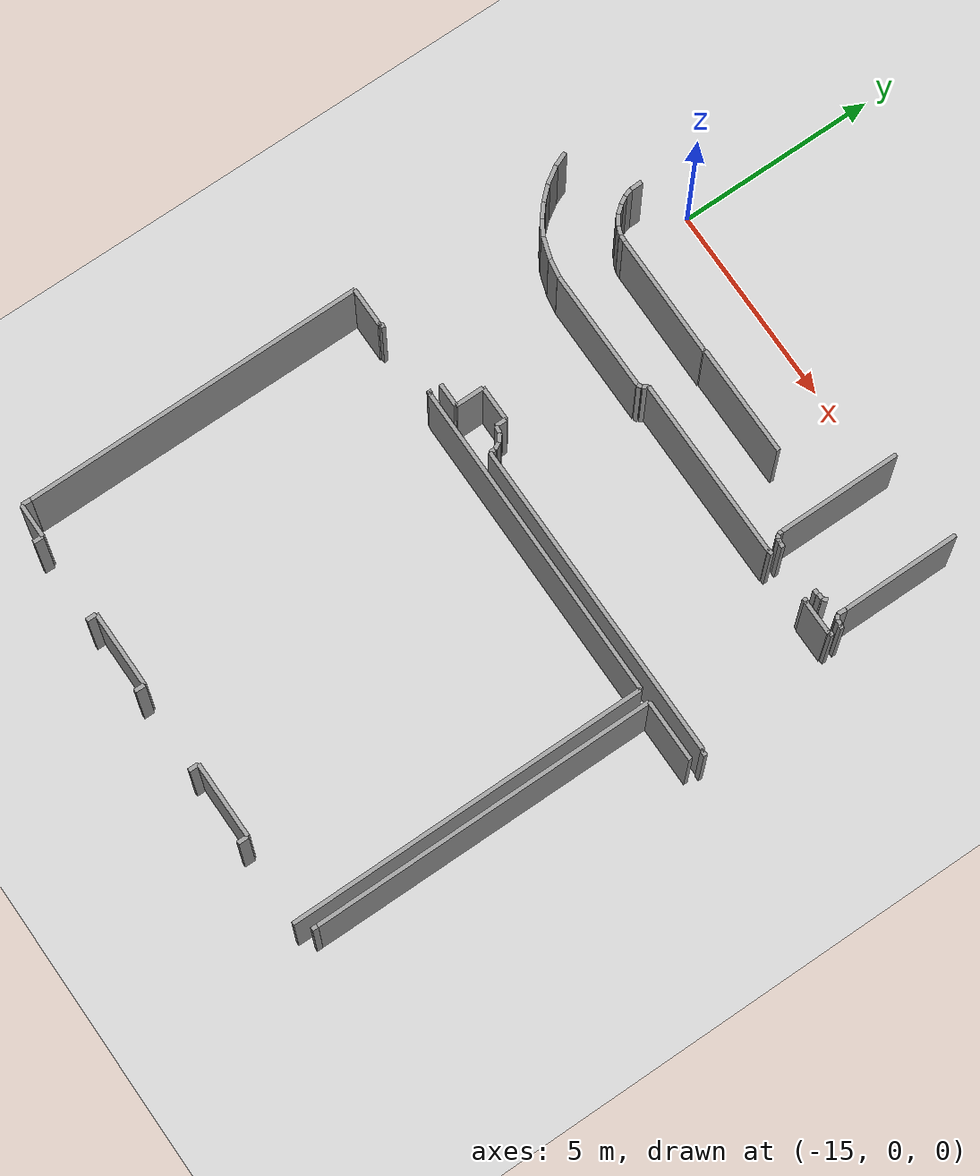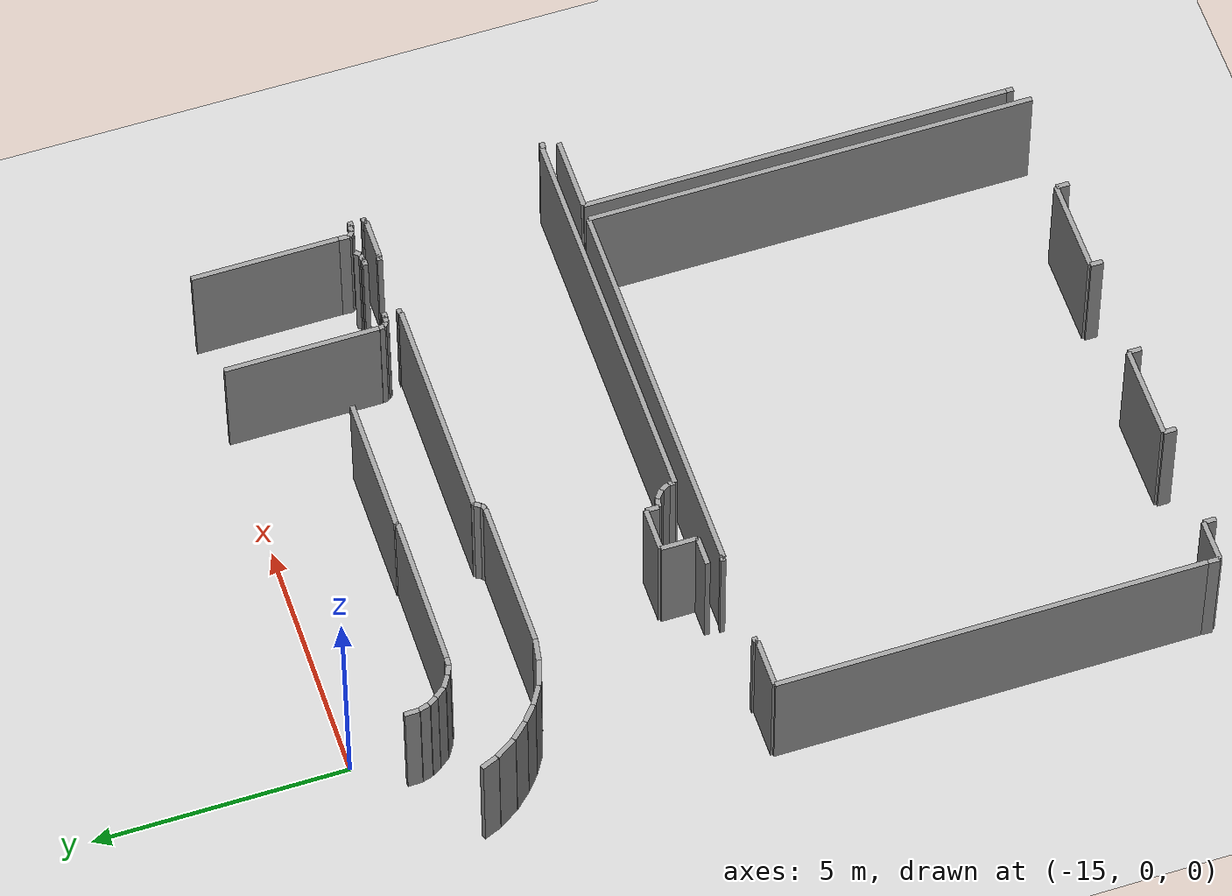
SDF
<sdf version="1.6">
 <world name="default">
  <model name="ground_plane">
   <static>1</static>
   <link name="link">
    <collision name="collision">
     <geometry><plane><normal>0 0 1</normal><size>100 100</size></plane></geometry>
     <surface><friction><ode><mu>100</mu><mu2>50</mu2></ode></friction></surface>
    </collision>
    <visual name="visual">
     <cast_shadows>0</cast_shadows>
     <geometry><plane><normal>0 0 1</normal><size>100 100</size></plane></geometry>
     <material>
      <script><uri>file://media/materials/scripts/gazebo.material</uri><name>Gazebo/Grey</name></script>
     </material>
    </visual>
   </link>
  </model>
  <model name="0510032261_A_40_1_103">
   <static>1</static>
   <link name="Wall_133">
    <collision name="Wall_133_Collision">
     <geometry><box><size>0.0264294790343 0.1 2.5</size></box></geometry>
     <pose>0.0132147395172 0 1.25 0 0 0</pose>
    </collision>
    <visual name="Wall_133_Visual">
     <pose>0.0132147395172 0 1.25 0 0 0</pose>
     <geometry><box><size>0.0264294790343 0.1 2.5</size></box></geometry>
     <material>
      <script><uri>file://media/materials/scripts/gazebo.material</uri><name>Gazebo/Grey</name></script>
      <ambient>1 1 1 1</ambient>
     </material>
    </visual>
    <pose>37.4912325286 -20.0506988564 0 0 0 3.14159265359</pose>
   </link>
   <link name="Wall_134">
    <collision name="Wall_134_Collision">
     <geometry><box><size>0.138328349531 0.1 2.5</size></box></geometry>
     <pose>0.0691641747655 0 1.25 0 0 0</pose>
    </collision>
    <visual name="Wall_134_Visual">
     <pose>0.0691641747655 0 1.25 0 0 0</pose>
     <geometry><box><size>0.138328349531 0.1 2.5</size></box></geometry>
     <material>
      <script><uri>file://media/materials/scripts/gazebo.material</uri><name>Gazebo/Grey</name></script>
      <ambient>1 1 1 1</ambient>
     </material>
    </visual>
    <pose>37.4648030496 -20.0506988564 0 0 0 -2.00198513845</pose>
   </link>
   <link name="Wall_135">
    <collision name="Wall_135_Collision">
     <geometry><box><size>0.109798474855 0.1 2.5</size></box></geometry>
     <pose>0.0548992374275 0 1.25 0 0 0</pose>
    </collision>
    <visual name="Wall_135_Visual">
     <pose>0.0548992374275 0 1.25 0 0 0</pose>
     <geometry><box><size>0.109798474855 0.1 2.5</size></box></geometry>
     <material>
      <script><uri>file://media/materials/scripts/gazebo.material</uri><name>Gazebo/Grey</name></script>
      <ambient>1 1 1 1</ambient>
     </material>
    </visual>
    <pose>37.4069885642 -20.1763659466 0 0 0 -2.6629358198</pose>
   </link>
   <link name="Wall_136">
    <collision name="Wall_136_Collision">
     <geometry><box><size>3.01194409149 0.1 2.5</size></box></geometry>
     <pose>1.50597204574 0 1.25 0 0 0</pose>
    </collision>
    <visual name="Wall_136_Visual">
     <pose>1.50597204574 0 1.25 0 0 0</pose>
     <geometry><box><size>3.01194409149 0.1 2.5</size></box></geometry>
     <material>
      <script><uri>file://media/materials/scripts/gazebo.material</uri><name>Gazebo/Grey</name></script>
      <ambient>1 1 1 1</ambient>
     </material>
    </visual>
    <pose>37.3095298602 -20.2269377382 0 0 0 3.14159265359</pose>
   </link>
   <link name="Wall_137">
    <collision name="Wall_137_Collision">
     <geometry><box><size>0.459233451374 0.1 2.5</size></box></geometry>
     <pose>0.229616725687 0 1.25 0 0 0</pose>
    </collision>
    <visual name="Wall_137_Visual">
     <pose>0.229616725687 0 1.25 0 0 0</pose>
     <geometry><box><size>0.459233451374 0.1 2.5</size></box></geometry>
     <material>
      <script><uri>file://media/materials/scripts/gazebo.material</uri><name>Gazebo/Grey</name></script>
      <ambient>1 1 1 1</ambient>
     </material>
    </visual>
    <pose>34.2975857687 -20.2269377382 0 0 0 2.97312339158</pose>
   </link>
   <link name="Wall_138">
    <collision name="Wall_138_Collision">
     <geometry><box><size>0.546393368792 0.1 2.5</size></box></geometry>
     <pose>0.273196684396 0 1.25 0 0 0</pose>
    </collision>
    <visual name="Wall_138_Visual">
     <pose>0.273196684396 0 1.25 0 0 0</pose>
     <geometry><box><size>0.546393368792 0.1 2.5</size></box></geometry>
     <material>
      <script><uri>file://media/materials/scripts/gazebo.material</uri><name>Gazebo/Grey</name></script>
      <ambient>1 1 1 1</ambient>
     </material>
    </visual>
    <pose>33.8448538755 -20.1499364676 0 0 0 2.82469571603</pose>
   </link>
   <link name="Wall_139">
    <collision name="Wall_139_Collision">
     <geometry><box><size>0.422328388434 0.1 2.5</size></box></geometry>
     <pose>0.211164194217 0 1.25 0 0 0</pose>
    </collision>
    <visual name="Wall_139_Visual">
     <pose>0.211164194217 0 1.25 0 0 0</pose>
     <geometry><box><size>0.422328388434 0.1 2.5</size></box></geometry>
     <material>
      <script><uri>file://media/materials/scripts/gazebo.material</uri><name>Gazebo/Grey</name></script>
      <ambient>1 1 1 1</ambient>
     </material>
    </visual>
    <pose>33.3256670902 -19.9796696315 0 0 0 2.59415572465</pose>
   </link>
   <link name="Wall_140">
    <collision name="Wall_140_Collision">
     <geometry><box><size>0.39449749875 0.1 2.5</size></box></geometry>
     <pose>0.197248749375 0 1.25 0 0 0</pose>
    </collision>
    <visual name="Wall_140_Visual">
     <pose>0.197248749375 0 1.25 0 0 0</pose>
     <geometry><box><size>0.39449749875 0.1 2.5</size></box></geometry>
     <material>
      <script><uri>file://media/materials/scripts/gazebo.material</uri><name>Gazebo/Grey</name></script>
      <ambient>1 1 1 1</ambient>
     </material>
    </visual>
    <pose>32.9650571792 -19.7598475222 0 0 0 2.440792096</pose>
   </link>
   <link name="Wall_141">
    <collision name="Wall_141_Collision">
     <geometry><box><size>0.42944117635 0.1 2.5</size></box></geometry>
     <pose>0.214720588175 0 1.25 0 0 0</pose>
    </collision>
    <visual name="Wall_141_Visual">
     <pose>0.214720588175 0 1.25 0 0 0</pose>
     <geometry><box><size>0.42944117635 0.1 2.5</size></box></geometry>
     <material>
      <script><uri>file://media/materials/scripts/gazebo.material</uri><name>Gazebo/Grey</name></script>
      <ambient>1 1 1 1</ambient>
     </material>
    </visual>
    <pose>32.6635324015 -19.5054637865 0 0 0 2.31726943772</pose>
   </link>
   <link name="Wall_142">
    <collision name="Wall_142_Collision">
     <geometry><box><size>0.473972154313 0.1 2.5</size></box></geometry>
     <pose>0.236986077156 0 1.25 0 0 0</pose>
    </collision>
    <visual name="Wall_142_Visual">
     <pose>0.236986077156 0 1.25 0 0 0</pose>
     <geometry><box><size>0.473972154313 0.1 2.5</size></box></geometry>
     <material>
      <script><uri>file://media/materials/scripts/gazebo.material</uri><name>Gazebo/Grey</name></script>
      <ambient>1 1 1 1</ambient>
     </material>
    </visual>
    <pose>32.3719186785 -19.1902160102 0 0 0 2.14496875925</pose>
   </link>
   <link name="Wall_143">
    <collision name="Wall_143_Collision">
     <geometry><box><size>0.368353697674 0.1 2.5</size></box></geometry>
     <pose>0.184176848837 0 1.25 0 0 0</pose>
    </collision>
    <visual name="Wall_143_Visual">
     <pose>0.184176848837 0 1.25 0 0 0</pose>
     <geometry><box><size>0.368353697674 0.1 2.5</size></box></geometry>
     <material>
      <script><uri>file://media/materials/scripts/gazebo.material</uri><name>Gazebo/Grey</name></script>
      <ambient>1 1 1 1</ambient>
     </material>
    </visual>
    <pose>32.1144853875 -18.792249047 0 0 0 1.95738808135</pose>
   </link>
   <link name="Wall_165">
    <collision name="Wall_165_Collision">
     <geometry><box><size>0.593265565438 0.1 2.5</size></box></geometry>
     <pose>0.296632782719 0 1.25 0 0 0</pose>
    </collision>
    <visual name="Wall_165_Visual">
     <pose>0.296632782719 0 1.25 0 0 0</pose>
     <geometry><box><size>0.593265565438 0.1 2.5</size></box></geometry>
     <material>
      <script><uri>file://media/materials/scripts/gazebo.material</uri><name>Gazebo/Grey</name></script>
      <ambient>1 1 1 1</ambient>
     </material>
    </visual>
    <pose>34.8598475222 -23.7714104193 0 0 0 0.0</pose>
   </link>
   <link name="Wall_166">
    <collision name="Wall_166_Collision">
     <geometry><box><size>0.719949174079 0.1 2.5</size></box></geometry>
     <pose>0.359974587039 0 1.25 0 0 0</pose>
    </collision>
    <visual name="Wall_166_Visual">
     <pose>0.359974587039 0 1.25 0 0 0</pose>
     <geometry><box><size>0.719949174079 0.1 2.5</size></box></geometry>
     <material>
      <script><uri>file://media/materials/scripts/gazebo.material</uri><name>Gazebo/Grey</name></script>
      <ambient>1 1 1 1</ambient>
     </material>
    </visual>
    <pose>35.4531130877 -23.7714104193 0 0 0 1.57079632679</pose>
   </link>
   <link name="Wall_167">
    <collision name="Wall_167_Collision">
     <geometry><box><size>0.877128335451 0.1 2.5</size></box></geometry>
     <pose>0.438564167726 0 1.25 0 0 0</pose>
    </collision>
    <visual name="Wall_167_Visual">
     <pose>0.438564167726 0 1.25 0 0 0</pose>
     <geometry><box><size>0.877128335451 0.1 2.5</size></box></geometry>
     <material>
      <script><uri>file://media/materials/scripts/gazebo.material</uri><name>Gazebo/Grey</name></script>
      <ambient>1 1 1 1</ambient>
     </material>
    </visual>
    <pose>35.4531130877 -23.0514612452 0 0 0 0.0</pose>
   </link>
   <link name="Wall_168">
    <collision name="Wall_168_Collision">
     <geometry><box><size>0.258958068615 0.1 2.5</size></box></geometry>
     <pose>0.129479034307 0 1.25 0 0 0</pose>
    </collision>
    <visual name="Wall_168_Visual">
     <pose>0.129479034307 0 1.25 0 0 0</pose>
     <geometry><box><size>0.258958068615 0.1 2.5</size></box></geometry>
     <material>
      <script><uri>file://media/materials/scripts/gazebo.material</uri><name>Gazebo/Grey</name></script>
      <ambient>1 1 1 1</ambient>
     </material>
    </visual>
    <pose>36.3302414231 -23.0514612452 0 0 0 -1.57079632679</pose>
   </link>
   <link name="Wall_169">
    <collision name="Wall_169_Collision">
     <geometry><box><size>0.185558905784 0.1 2.5</size></box></geometry>
     <pose>0.0927794528922 0 1.25 0 0 0</pose>
    </collision>
    <visual name="Wall_169_Visual">
     <pose>0.0927794528922 0 1.25 0 0 0</pose>
     <geometry><box><size>0.185558905784 0.1 2.5</size></box></geometry>
     <material>
      <script><uri>file://media/materials/scripts/gazebo.material</uri><name>Gazebo/Grey</name></script>
      <ambient>1 1 1 1</ambient>
     </material>
    </visual>
    <pose>36.3302414231 -23.3104193139 0 0 0 -0.135311831182</pose>
   </link>
   <link name="Wall_170">
    <collision name="Wall_170_Collision">
     <geometry><box><size>0.207497445864 0.1 2.5</size></box></geometry>
     <pose>0.103748722932 0 1.25 0 0 0</pose>
    </collision>
    <visual name="Wall_170_Visual">
     <pose>0.103748722932 0 1.25 0 0 0</pose>
     <geometry><box><size>0.207497445864 0.1 2.5</size></box></geometry>
     <material>
      <script><uri>file://media/materials/scripts/gazebo.material</uri><name>Gazebo/Grey</name></script>
      <ambient>1 1 1 1</ambient>
     </material>
    </visual>
    <pose>36.5141041931 -23.3354510801 0 0 0 -0.699991481755</pose>
   </link>
   <link name="Wall_171">
    <collision name="Wall_171_Collision">
     <geometry><box><size>0.186954603456 0.1 2.5</size></box></geometry>
     <pose>0.0934773017278 0 1.25 0 0 0</pose>
    </collision>
    <visual name="Wall_171_Visual">
     <pose>0.0934773017278 0 1.25 0 0 0</pose>
     <geometry><box><size>0.186954603456 0.1 2.5</size></box></geometry>
     <material>
      <script><uri>file://media/materials/scripts/gazebo.material</uri><name>Gazebo/Grey</name></script>
      <ambient>1 1 1 1</ambient>
     </material>
    </visual>
    <pose>36.6728081321 -23.4691232529 0 0 0 -1.10714871779</pose>
   </link>
   <link name="Wall_172">
    <collision name="Wall_172_Collision">
     <geometry><box><size>0.125285895807 0.1 2.5</size></box></geometry>
     <pose>0.0626429479034 0 1.25 0 0 0</pose>
    </collision>
    <visual name="Wall_172_Visual">
     <pose>0.0626429479034 0 1.25 0 0 0</pose>
     <geometry><box><size>0.125285895807 0.1 2.5</size></box></geometry>
     <material>
      <script><uri>file://media/materials/scripts/gazebo.material</uri><name>Gazebo/Grey</name></script>
      <ambient>1 1 1 1</ambient>
     </material>
    </visual>
    <pose>36.7564167726 -23.6363405337 0 0 0 -1.57079632679</pose>
   </link>
   <link name="Wall_173">
    <collision name="Wall_173_Collision">
     <geometry><box><size>8.03494282084 0.1 2.5</size></box></geometry>
     <pose>4.01747141042 0 1.25 0 0 0</pose>
    </collision>
    <visual name="Wall_173_Visual">
     <pose>4.01747141042 0 1.25 0 0 0</pose>
     <geometry><box><size>8.03494282084 0.1 2.5</size></box></geometry>
     <material>
      <script><uri>file://media/materials/scripts/gazebo.material</uri><name>Gazebo/Grey</name></script>
      <ambient>1 1 1 1</ambient>
     </material>
    </visual>
    <pose>36.7564167726 -23.7616264295 0 0 0 0.0</pose>
   </link>
   <link name="Wall_174">
    <collision name="Wall_174_Collision">
     <geometry><box><size>0.0288437102923 0.1 2.5</size></box></geometry>
     <pose>0.0144218551461 0 1.25 0 0 0</pose>
    </collision>
    <visual name="Wall_174_Visual">
     <pose>0.0144218551461 0 1.25 0 0 0</pose>
     <geometry><box><size>0.0288437102923 0.1 2.5</size></box></geometry>
     <material>
      <script><uri>file://media/materials/scripts/gazebo.material</uri><name>Gazebo/Grey</name></script>
      <ambient>1 1 1 1</ambient>
     </material>
    </visual>
    <pose>44.7913595934 -23.7616264295 0 0 0 -1.57079632679</pose>
   </link>
   <link name="Wall_175">
    <collision name="Wall_175_Collision">
     <geometry><box><size>0.133672172808 0.1 2.5</size></box></geometry>
     <pose>0.0668360864041 0 1.25 0 0 0</pose>
    </collision>
    <visual name="Wall_175_Visual">
     <pose>0.0668360864041 0 1.25 0 0 0</pose>
     <geometry><box><size>0.133672172808 0.1 2.5</size></box></geometry>
     <material>
      <script><uri>file://media/materials/scripts/gazebo.material</uri><name>Gazebo/Grey</name></script>
      <ambient>1 1 1 1</ambient>
     </material>
    </visual>
    <pose>44.7913595934 -23.7904701398 0 0 0 0.0</pose>
   </link>
   <link name="Wall_198">
    <collision name="Wall_198_Collision">
     <geometry><box><size>0.0997458703939 0.1 2.5</size></box></geometry>
     <pose>0.049872935197 0 1.25 0 0 0</pose>
    </collision>
    <visual name="Wall_198_Visual">
     <pose>0.049872935197 0 1.25 0 0 0</pose>
     <geometry><box><size>0.0997458703939 0.1 2.5</size></box></geometry>
     <material>
      <script><uri>file://media/materials/scripts/gazebo.material</uri><name>Gazebo/Grey</name></script>
      <ambient>1 1 1 1</ambient>
     </material>
    </visual>
    <pose>44.3207115629 -20.017407878 0 0 0 3.14159265359</pose>
   </link>
   <link name="Wall_199">
    <collision name="Wall_199_Collision">
     <geometry><box><size>0.0329097839898 0.1 2.5</size></box></geometry>
     <pose>0.0164548919949 0 1.25 0 0 0</pose>
    </collision>
    <visual name="Wall_199_Visual">
     <pose>0.0164548919949 0 1.25 0 0 0</pose>
     <geometry><box><size>0.0329097839898 0.1 2.5</size></box></geometry>
     <material>
      <script><uri>file://media/materials/scripts/gazebo.material</uri><name>Gazebo/Grey</name></script>
      <ambient>1 1 1 1</ambient>
     </material>
    </visual>
    <pose>44.2209656925 -20.017407878 0 0 0 -1.57079632679</pose>
   </link>
   <link name="Wall_200">
    <collision name="Wall_200_Collision">
     <geometry><box><size>0.847395171537 0.1 2.5</size></box></geometry>
     <pose>0.423697585769 0 1.25 0 0 0</pose>
    </collision>
    <visual name="Wall_200_Visual">
     <pose>0.423697585769 0 1.25 0 0 0</pose>
     <geometry><box><size>0.847395171537 0.1 2.5</size></box></geometry>
     <material>
      <script><uri>file://media/materials/scripts/gazebo.material</uri><name>Gazebo/Grey</name></script>
      <ambient>1 1 1 1</ambient>
     </material>
    </visual>
    <pose>44.2209656925 -20.050317662 0 0 0 3.14159265359</pose>
   </link>
   <link name="Wall_201">
    <collision name="Wall_201_Collision">
     <geometry><box><size>0.0166454891995 0.1 2.5</size></box></geometry>
     <pose>0.00832274459975 0 1.25 0 0 0</pose>
    </collision>
    <visual name="Wall_201_Visual">
     <pose>0.00832274459975 0 1.25 0 0 0</pose>
     <geometry><box><size>0.0166454891995 0.1 2.5</size></box></geometry>
     <material>
      <script><uri>file://media/materials/scripts/gazebo.material</uri><name>Gazebo/Grey</name></script>
      <ambient>1 1 1 1</ambient>
     </material>
    </visual>
    <pose>43.373570521 -20.050317662 0 0 0 1.57079632679</pose>
   </link>
   <link name="Wall_202">
    <collision name="Wall_202_Collision">
     <geometry><box><size>0.087166454892 0.1 2.5</size></box></geometry>
     <pose>0.043583227446 0 1.25 0 0 0</pose>
    </collision>
    <visual name="Wall_202_Visual">
     <pose>0.043583227446 0 1.25 0 0 0</pose>
     <geometry><box><size>0.087166454892 0.1 2.5</size></box></geometry>
     <material>
      <script><uri>file://media/materials/scripts/gazebo.material</uri><name>Gazebo/Grey</name></script>
      <ambient>1 1 1 1</ambient>
     </material>
    </visual>
    <pose>43.373570521 -20.0336721728 0 0 0 3.14159265359</pose>
   </link>
   <link name="Wall_203">
    <collision name="Wall_203_Collision">
     <geometry><box><size>0.104828462516 0.1 2.5</size></box></geometry>
     <pose>0.0524142312579 0 1.25 0 0 0</pose>
    </collision>
    <visual name="Wall_203_Visual">
     <pose>0.0524142312579 0 1.25 0 0 0</pose>
     <geometry><box><size>0.104828462516 0.1 2.5</size></box></geometry>
     <material>
      <script><uri>file://media/materials/scripts/gazebo.material</uri><name>Gazebo/Grey</name></script>
      <ambient>1 1 1 1</ambient>
     </material>
    </visual>
    <pose>42.1062261753 -20.0336721728 0 0 0 3.14159265359</pose>
   </link>
   <link name="Wall_204">
    <collision name="Wall_204_Collision">
     <geometry><box><size>0.0198221092757 0.1 2.5</size></box></geometry>
     <pose>0.00991105463787 0 1.25 0 0 0</pose>
    </collision>
    <visual name="Wall_204_Visual">
     <pose>0.00991105463787 0 1.25 0 0 0</pose>
     <geometry><box><size>0.0198221092757 0.1 2.5</size></box></geometry>
     <material>
      <script><uri>file://media/materials/scripts/gazebo.material</uri><name>Gazebo/Grey</name></script>
      <ambient>1 1 1 1</ambient>
     </material>
    </visual>
    <pose>42.0013977128 -20.0336721728 0 0 0 -1.57079632679</pose>
   </link>
   <link name="Wall_205">
    <collision name="Wall_205_Collision">
     <geometry><box><size>4.51016605055 0.1 2.5</size></box></geometry>
     <pose>2.25508302528 0 1.25 0 0 0</pose>
    </collision>
    <visual name="Wall_205_Visual">
     <pose>2.25508302528 0 1.25 0 0 0</pose>
     <geometry><box><size>4.51016605055 0.1 2.5</size></box></geometry>
     <material>
      <script><uri>file://media/materials/scripts/gazebo.material</uri><name>Gazebo/Grey</name></script>
      <ambient>1 1 1 1</ambient>
     </material>
    </visual>
    <pose>42.0013977128 -20.0534942821 0 0 0 3.14097284806</pose>
   </link>
   <link name="Wall_206">
    <collision name="Wall_206_Collision">
     <geometry><box><size>3.06968528981 0.1 2.5</size></box></geometry>
     <pose>1.53484264491 0 1.25 0 0 0</pose>
    </collision>
    <visual name="Wall_206_Visual">
     <pose>1.53484264491 0 1.25 0 0 0</pose>
     <geometry><box><size>3.06968528981 0.1 2.5</size></box></geometry>
     <material>
      <script><uri>file://media/materials/scripts/gazebo.material</uri><name>Gazebo/Grey</name></script>
      <ambient>1 1 1 1</ambient>
     </material>
    </visual>
    <pose>37.5 -18.5733163914 0 0 0 3.13567335854</pose>
   </link>
   <link name="Wall_207">
    <collision name="Wall_207_Collision">
     <geometry><box><size>0.16783259646 0.1 2.5</size></box></geometry>
     <pose>0.0839162982301 0 1.25 0 0 0</pose>
    </collision>
    <visual name="Wall_207_Visual">
     <pose>0.0839162982301 0 1.25 0 0 0</pose>
     <geometry><box><size>0.16783259646 0.1 2.5</size></box></geometry>
     <material>
      <script><uri>file://media/materials/scripts/gazebo.material</uri><name>Gazebo/Grey</name></script>
      <ambient>1 1 1 1</ambient>
     </material>
    </visual>
    <pose>34.4303684879 -18.5551461245 0 0 0 3.05593649459</pose>
   </link>
   <link name="Wall_208">
    <collision name="Wall_208_Collision">
     <geometry><box><size>0.210217762829 0.1 2.5</size></box></geometry>
     <pose>0.105108881414 0 1.25 0 0 0</pose>
    </collision>
    <visual name="Wall_208_Visual">
     <pose>0.105108881414 0 1.25 0 0 0</pose>
     <geometry><box><size>0.210217762829 0.1 2.5</size></box></geometry>
     <material>
      <script><uri>file://media/materials/scripts/gazebo.material</uri><name>Gazebo/Grey</name></script>
      <ambient>1 1 1 1</ambient>
     </material>
    </visual>
    <pose>34.2631512071 -18.5407878018 0 0 0 2.76916781565</pose>
   </link>
   <link name="Wall_209">
    <collision name="Wall_209_Collision">
     <geometry><box><size>0.279547562621 0.1 2.5</size></box></geometry>
     <pose>0.139773781311 0 1.25 0 0 0</pose>
    </collision>
    <visual name="Wall_209_Visual">
     <pose>0.139773781311 0 1.25 0 0 0</pose>
     <geometry><box><size>0.279547562621 0.1 2.5</size></box></geometry>
     <material>
      <script><uri>file://media/materials/scripts/gazebo.material</uri><name>Gazebo/Grey</name></script>
      <ambient>1 1 1 1</ambient>
     </material>
    </visual>
    <pose>34.0673443456 -18.4642947903 0 0 0 2.56304513893</pose>
   </link>
   <link name="Wall_210">
    <collision name="Wall_210_Collision">
     <geometry><box><size>0.248407302775 0.1 2.5</size></box></geometry>
     <pose>0.124203651388 0 1.25 0 0 0</pose>
    </collision>
    <visual name="Wall_210_Visual">
     <pose>0.124203651388 0 1.25 0 0 0</pose>
     <geometry><box><size>0.248407302775 0.1 2.5</size></box></geometry>
     <material>
      <script><uri>file://media/materials/scripts/gazebo.material</uri><name>Gazebo/Grey</name></script>
      <ambient>1 1 1 1</ambient>
     </material>
    </visual>
    <pose>33.8332909784 -18.3114358323 0 0 0 2.23363402041</pose>
   </link>
   <link name="Wall_211">
    <collision name="Wall_211_Collision">
     <geometry><box><size>0.208134552149 0.1 2.5</size></box></geometry>
     <pose>0.104067276074 0 1.25 0 0 0</pose>
    </collision>
    <visual name="Wall_211_Visual">
     <pose>0.104067276074 0 1.25 0 0 0</pose>
     <geometry><box><size>0.208134552149 0.1 2.5</size></box></geometry>
     <material>
      <script><uri>file://media/materials/scripts/gazebo.material</uri><name>Gazebo/Grey</name></script>
      <ambient>1 1 1 1</ambient>
     </material>
    </visual>
    <pose>33.6804320203 -18.1156289708 0 0 0 2.12713071364</pose>
   </link>
   <link name="Wall_212">
    <collision name="Wall_212_Collision">
     <geometry><box><size>0.208658900604 0.1 2.5</size></box></geometry>
     <pose>0.104329450302 0 1.25 0 0 0</pose>
    </collision>
    <visual name="Wall_212_Visual">
     <pose>0.104329450302 0 1.25 0 0 0</pose>
     <geometry><box><size>0.208658900604 0.1 2.5</size></box></geometry>
     <material>
      <script><uri>file://media/materials/scripts/gazebo.material</uri><name>Gazebo/Grey</name></script>
      <ambient>1 1 1 1</ambient>
     </material>
    </visual>
    <pose>33.5705209657 -17.9388818297 0 0 0 1.84901233879</pose>
   </link>
   <link name="Wall_213">
    <collision name="Wall_213_Collision">
     <geometry><box><size>0.292511373344 0.1 2.5</size></box></geometry>
     <pose>0.146255686672 0 1.25 0 0 0</pose>
    </collision>
    <visual name="Wall_213_Visual">
     <pose>0.146255686672 0 1.25 0 0 0</pose>
     <geometry><box><size>0.292511373344 0.1 2.5</size></box></geometry>
     <material>
      <script><uri>file://media/materials/scripts/gazebo.material</uri><name>Gazebo/Grey</name></script>
      <ambient>1 1 1 1</ambient>
     </material>
    </visual>
    <pose>33.5132147395 -17.7382465057 0 0 0 1.60120850309</pose>
   </link>
   <link name="Wall_233">
    <collision name="Wall_233_Collision">
     <geometry><box><size>2.76454891995 0.1 2.5</size></box></geometry>
     <pose>1.38227445997 0 1.25 0 0 0</pose>
    </collision>
    <visual name="Wall_233_Visual">
     <pose>1.38227445997 0 1.25 0 0 0</pose>
     <geometry><box><size>2.76454891995 0.1 2.5</size></box></geometry>
     <material>
      <script><uri>file://media/materials/scripts/gazebo.material</uri><name>Gazebo/Grey</name></script>
      <ambient>1 1 1 1</ambient>
     </material>
    </visual>
    <pose>40.2772554003 -18.550317662 0 0 0 3.14159265359</pose>
   </link>
   <link name="Wall_234">
    <collision name="Wall_234_Collision">
     <geometry><box><size>0.0262753914061 0.1 2.5</size></box></geometry>
     <pose>0.0131376957031 0 1.25 0 0 0</pose>
    </collision>
    <visual name="Wall_234_Visual">
     <pose>0.0131376957031 0 1.25 0 0 0</pose>
     <geometry><box><size>0.0262753914061 0.1 2.5</size></box></geometry>
     <material>
      <script><uri>file://media/materials/scripts/gazebo.material</uri><name>Gazebo/Grey</name></script>
      <ambient>1 1 1 1</ambient>
     </material>
    </visual>
    <pose>37.5127064803 -18.550317662 0 0 0 -2.07554631507</pose>
   </link>
   <link name="Wall_275">
    <collision name="Wall_275_Collision">
     <geometry><box><size>8.48500635324 0.1 2.5</size></box></geometry>
     <pose>4.24250317662 0 1.25 0 0 0</pose>
    </collision>
    <visual name="Wall_275_Visual">
     <pose>4.24250317662 0 1.25 0 0 0</pose>
     <geometry><box><size>8.48500635324 0.1 2.5</size></box></geometry>
     <material>
      <script><uri>file://media/materials/scripts/gazebo.material</uri><name>Gazebo/Grey</name></script>
      <ambient>1 1 1 1</ambient>
     </material>
    </visual>
    <pose>31.9881829733 -32.5893265565 0 0 0 1.57079632679</pose>
   </link>
   <link name="Wall_276">
    <collision name="Wall_276_Collision">
     <geometry><box><size>0.978526048285 0.1 2.5</size></box></geometry>
     <pose>0.489263024142 0 1.25 0 0 0</pose>
    </collision>
    <visual name="Wall_276_Visual">
     <pose>0.489263024142 0 1.25 0 0 0</pose>
     <geometry><box><size>0.978526048285 0.1 2.5</size></box></geometry>
     <material>
      <script><uri>file://media/materials/scripts/gazebo.material</uri><name>Gazebo/Grey</name></script>
      <ambient>1 1 1 1</ambient>
     </material>
    </visual>
    <pose>31.9881829733 -24.1043202033 0 0 0 0.0</pose>
   </link>
   <link name="Wall_277">
    <collision name="Wall_277_Collision">
     <geometry><box><size>0.0367217280813 0.1 2.5</size></box></geometry>
     <pose>0.0183608640407 0 1.25 0 0 0</pose>
    </collision>
    <visual name="Wall_277_Visual">
     <pose>0.0183608640407 0 1.25 0 0 0</pose>
     <geometry><box><size>0.0367217280813 0.1 2.5</size></box></geometry>
     <material>
      <script><uri>file://media/materials/scripts/gazebo.material</uri><name>Gazebo/Grey</name></script>
      <ambient>1 1 1 1</ambient>
     </material>
    </visual>
    <pose>32.9667090216 -24.1043202033 0 0 0 1.57079632679</pose>
   </link>
   <link name="Wall_278">
    <collision name="Wall_278_Collision">
     <geometry><box><size>0.107750952986 0.1 2.5</size></box></geometry>
     <pose>0.053875476493 0 1.25 0 0 0</pose>
    </collision>
    <visual name="Wall_278_Visual">
     <pose>0.053875476493 0 1.25 0 0 0</pose>
     <geometry><box><size>0.107750952986 0.1 2.5</size></box></geometry>
     <material>
      <script><uri>file://media/materials/scripts/gazebo.material</uri><name>Gazebo/Grey</name></script>
      <ambient>1 1 1 1</ambient>
     </material>
    </visual>
    <pose>32.9667090216 -24.0675984752 0 0 0 0.0</pose>
   </link>
   <link name="Wall_279">
    <collision name="Wall_279_Collision">
     <geometry><box><size>0.0872935196951 0.1 2.5</size></box></geometry>
     <pose>0.0436467598475 0 1.25 0 0 0</pose>
    </collision>
    <visual name="Wall_279_Visual">
     <pose>0.0436467598475 0 1.25 0 0 0</pose>
     <geometry><box><size>0.0872935196951 0.1 2.5</size></box></geometry>
     <material>
      <script><uri>file://media/materials/scripts/gazebo.material</uri><name>Gazebo/Grey</name></script>
      <ambient>1 1 1 1</ambient>
     </material>
    </visual>
    <pose>34.825158831 -24.0675984752 0 0 0 0.0</pose>
   </link>
   <link name="Wall_280">
    <collision name="Wall_280_Collision">
     <geometry><box><size>0.0242693773825 0.1 2.5</size></box></geometry>
     <pose>0.0121346886912 0 1.25 0 0 0</pose>
    </collision>
    <visual name="Wall_280_Visual">
     <pose>0.0121346886912 0 1.25 0 0 0</pose>
     <geometry><box><size>0.0242693773825 0.1 2.5</size></box></geometry>
     <material>
      <script><uri>file://media/materials/scripts/gazebo.material</uri><name>Gazebo/Grey</name></script>
      <ambient>1 1 1 1</ambient>
     </material>
    </visual>
    <pose>34.9124523507 -24.0675984752 0 0 0 -1.57079632679</pose>
   </link>
   <link name="Wall_281">
    <collision name="Wall_281_Collision">
     <geometry><box><size>8.03494282084 0.1 2.5</size></box></geometry>
     <pose>4.01747141042 0 1.25 0 0 0</pose>
    </collision>
    <visual name="Wall_281_Visual">
     <pose>4.01747141042 0 1.25 0 0 0</pose>
     <geometry><box><size>8.03494282084 0.1 2.5</size></box></geometry>
     <material>
      <script><uri>file://media/materials/scripts/gazebo.material</uri><name>Gazebo/Grey</name></script>
      <ambient>1 1 1 1</ambient>
     </material>
    </visual>
    <pose>34.9124523507 -24.0918678526 0 0 0 0.0</pose>
   </link>
   <link name="Wall_282">
    <collision name="Wall_282_Collision">
     <geometry><box><size>8.98513341804 0.1 2.5</size></box></geometry>
     <pose>4.49256670902 0 1.25 0 0 0</pose>
    </collision>
    <visual name="Wall_282_Visual">
     <pose>4.49256670902 0 1.25 0 0 0</pose>
     <geometry><box><size>8.98513341804 0.1 2.5</size></box></geometry>
     <material>
      <script><uri>file://media/materials/scripts/gazebo.material</uri><name>Gazebo/Grey</name></script>
      <ambient>1 1 1 1</ambient>
     </material>
    </visual>
    <pose>42.9473951715 -24.0918678526 0 0 0 -1.57079632679</pose>
   </link>
   <link name="Wall_283">
    <collision name="Wall_283_Collision">
     <geometry><box><size>0.261118170267 0.1 2.5</size></box></geometry>
     <pose>0.130559085133 0 1.25 0 0 0</pose>
    </collision>
    <visual name="Wall_283_Visual">
     <pose>0.130559085133 0 1.25 0 0 0</pose>
     <geometry><box><size>0.261118170267 0.1 2.5</size></box></geometry>
     <material>
      <script><uri>file://media/materials/scripts/gazebo.material</uri><name>Gazebo/Grey</name></script>
      <ambient>1 1 1 1</ambient>
     </material>
    </visual>
    <pose>40.8466327827 -33.0770012706 0 0 0 1.57079632679</pose>
   </link>
   <link name="Wall_284">
    <collision name="Wall_284_Collision">
     <geometry><box><size>1.90088945362 0.1 2.5</size></box></geometry>
     <pose>0.950444726811 0 1.25 0 0 0</pose>
    </collision>
    <visual name="Wall_284_Visual">
     <pose>0.950444726811 0 1.25 0 0 0</pose>
     <geometry><box><size>1.90088945362 0.1 2.5</size></box></geometry>
     <material>
      <script><uri>file://media/materials/scripts/gazebo.material</uri><name>Gazebo/Grey</name></script>
      <ambient>1 1 1 1</ambient>
     </material>
    </visual>
    <pose>40.8466327827 -32.8158831004 0 0 0 3.14159265359</pose>
   </link>
   <link name="Wall_285">
    <collision name="Wall_285_Collision">
     <geometry><box><size>0.251588310038 0.1 2.5</size></box></geometry>
     <pose>0.125794155019 0 1.25 0 0 0</pose>
    </collision>
    <visual name="Wall_285_Visual">
     <pose>0.125794155019 0 1.25 0 0 0</pose>
     <geometry><box><size>0.251588310038 0.1 2.5</size></box></geometry>
     <material>
      <script><uri>file://media/materials/scripts/gazebo.material</uri><name>Gazebo/Grey</name></script>
      <ambient>1 1 1 1</ambient>
     </material>
    </visual>
    <pose>38.9457433291 -32.8158831004 0 0 0 -1.57079632679</pose>
   </link>
   <link name="Wall_286">
    <collision name="Wall_286_Collision">
     <geometry><box><size>0.256416772554 0.1 2.5</size></box></geometry>
     <pose>0.128208386277 0 1.25 0 0 0</pose>
    </collision>
    <visual name="Wall_286_Visual">
     <pose>0.128208386277 0 1.25 0 0 0</pose>
     <geometry><box><size>0.256416772554 0.1 2.5</size></box></geometry>
     <material>
      <script><uri>file://media/materials/scripts/gazebo.material</uri><name>Gazebo/Grey</name></script>
      <ambient>1 1 1 1</ambient>
     </material>
    </visual>
    <pose>36.8398983482 -33.0674714104 0 0 0 1.57079632679</pose>
   </link>
   <link name="Wall_287">
    <collision name="Wall_287_Collision">
     <geometry><box><size>1.89847522236 0.1 2.5</size></box></geometry>
     <pose>0.949237611182 0 1.25 0 0 0</pose>
    </collision>
    <visual name="Wall_287_Visual">
     <pose>0.949237611182 0 1.25 0 0 0</pose>
     <geometry><box><size>1.89847522236 0.1 2.5</size></box></geometry>
     <material>
      <script><uri>file://media/materials/scripts/gazebo.material</uri><name>Gazebo/Grey</name></script>
      <ambient>1 1 1 1</ambient>
     </material>
    </visual>
    <pose>36.8398983482 -32.8110546379 0 0 0 3.14159265359</pose>
   </link>
   <link name="Wall_288">
    <collision name="Wall_288_Collision">
     <geometry><box><size>0.252986022872 0.1 2.5</size></box></geometry>
     <pose>0.126493011436 0 1.25 0 0 0</pose>
    </collision>
    <visual name="Wall_288_Visual">
     <pose>0.126493011436 0 1.25 0 0 0</pose>
     <geometry><box><size>0.252986022872 0.1 2.5</size></box></geometry>
     <material>
      <script><uri>file://media/materials/scripts/gazebo.material</uri><name>Gazebo/Grey</name></script>
      <ambient>1 1 1 1</ambient>
     </material>
    </visual>
    <pose>34.9414231258 -32.8110546379 0 0 0 -1.57079632679</pose>
   </link>
   <link name="Wall_289">
    <collision name="Wall_289_Collision">
     <geometry><box><size>0.245108005083 0.1 2.5</size></box></geometry>
     <pose>0.122554002541 0 1.25 0 0 0</pose>
    </collision>
    <visual name="Wall_289_Visual">
     <pose>0.122554002541 0 1.25 0 0 0</pose>
     <geometry><box><size>0.245108005083 0.1 2.5</size></box></geometry>
     <material>
      <script><uri>file://media/materials/scripts/gazebo.material</uri><name>Gazebo/Grey</name></script>
      <ambient>1 1 1 1</ambient>
     </material>
    </visual>
    <pose>32.8271918679 -33.0640406607 0 0 0 1.57079632679</pose>
   </link>
   <link name="Wall_290">
    <collision name="Wall_290_Collision">
     <geometry><box><size>0.849047013977 0.1 2.5</size></box></geometry>
     <pose>0.424523506989 0 1.25 0 0 0</pose>
    </collision>
    <visual name="Wall_290_Visual">
     <pose>0.424523506989 0 1.25 0 0 0</pose>
     <geometry><box><size>0.849047013977 0.1 2.5</size></box></geometry>
     <material>
      <script><uri>file://media/materials/scripts/gazebo.material</uri><name>Gazebo/Grey</name></script>
      <ambient>1 1 1 1</ambient>
     </material>
    </visual>
    <pose>32.8271918679 -32.8189326557 0 0 0 3.14159265359</pose>
   </link>
   <link name="Wall_291">
    <collision name="Wall_291_Collision">
     <geometry><box><size>0.229825421985 0.1 2.5</size></box></geometry>
     <pose>0.114912710993 0 1.25 0 0 0</pose>
    </collision>
    <visual name="Wall_291_Visual">
     <pose>0.114912710993 0 1.25 0 0 0</pose>
     <geometry><box><size>0.229825421985 0.1 2.5</size></box></geometry>
     <material>
      <script><uri>file://media/materials/scripts/gazebo.material</uri><name>Gazebo/Grey</name></script>
      <ambient>1 1 1 1</ambient>
     </material>
    </visual>
    <pose>31.9781448539 -32.8189326557 0 0 0 1.52710527771</pose>
   </link>
   <link name="Wall_292">
    <collision name="Wall_292_Collision">
     <geometry><box><size>8.56645489199 0.1 2.5</size></box></geometry>
     <pose>4.283227446 0 1.25 0 0 0</pose>
    </collision>
    <visual name="Wall_292_Visual">
     <pose>4.283227446 0 1.25 0 0 0</pose>
     <geometry><box><size>8.56645489199 0.1 2.5</size></box></geometry>
     <material>
      <script><uri>file://media/materials/scripts/gazebo.material</uri><name>Gazebo/Grey</name></script>
      <ambient>1 1 1 1</ambient>
     </material>
    </visual>
    <pose>43.2770012706 -32.6706480305 0 0 0 1.57079632679</pose>
   </link>
   <link name="Wall_293">
    <collision name="Wall_293_Collision">
     <geometry><box><size>1.53379923761 0.1 2.5</size></box></geometry>
     <pose>0.766899618806 0 1.25 0 0 0</pose>
    </collision>
    <visual name="Wall_293_Visual">
     <pose>0.766899618806 0 1.25 0 0 0</pose>
     <geometry><box><size>1.53379923761 0.1 2.5</size></box></geometry>
     <material>
      <script><uri>file://media/materials/scripts/gazebo.material</uri><name>Gazebo/Grey</name></script>
      <ambient>1 1 1 1</ambient>
     </material>
    </visual>
    <pose>43.2770012706 -24.1041931385 0 0 0 0.0</pose>
   </link>
   <link name="Wall_304">
    <collision name="Wall_304_Collision">
     <geometry><box><size>0.143965319044 0.1 2.5</size></box></geometry>
     <pose>0.0719826595221 0 1.25 0 0 0</pose>
    </collision>
    <visual name="Wall_304_Visual">
     <pose>0.0719826595221 0 1.25 0 0 0</pose>
     <geometry><box><size>0.143965319044 0.1 2.5</size></box></geometry>
     <material>
      <script><uri>file://media/materials/scripts/gazebo.material</uri><name>Gazebo/Grey</name></script>
      <ambient>1 1 1 1</ambient>
     </material>
    </visual>
    <pose>43.2764930114 -32.8146124524 0 0 0 1.56726589133</pose>
   </link>
   <link name="Wall_305">
    <collision name="Wall_305_Collision">
     <geometry><box><size>3.05883100381 0.1 2.5</size></box></geometry>
     <pose>1.52941550191 0 1.25 0 0 0</pose>
    </collision>
    <visual name="Wall_305_Visual">
     <pose>1.52941550191 0 1.25 0 0 0</pose>
     <geometry><box><size>3.05883100381 0.1 2.5</size></box></geometry>
     <material>
      <script><uri>file://media/materials/scripts/gazebo.material</uri><name>Gazebo/Grey</name></script>
      <ambient>1 1 1 1</ambient>
     </material>
    </visual>
    <pose>41.8057179161 -19.5534942821 0 0 0 1.57079632679</pose>
   </link>
   <link name="Wall_311">
    <collision name="Wall_311_Collision">
     <geometry><box><size>0.126436630218 0.1 2.5</size></box></geometry>
     <pose>0.063218315109 0 1.25 0 0 0</pose>
    </collision>
    <visual name="Wall_311_Visual">
     <pose>0.063218315109 0 1.25 0 0 0</pose>
     <geometry><box><size>0.126436630218 0.1 2.5</size></box></geometry>
     <material>
      <script><uri>file://media/materials/scripts/gazebo.material</uri><name>Gazebo/Grey</name></script>
      <ambient>1 1 1 1</ambient>
     </material>
    </visual>
    <pose>43.6123252859 -19.6311308767 0 0 0 -2.33842805838</pose>
   </link>
   <link name="Wall_312">
    <collision name="Wall_312_Collision">
     <geometry><box><size>0.138119440915 0.1 2.5</size></box></geometry>
     <pose>0.0690597204574 0 1.25 0 0 0</pose>
    </collision>
    <visual name="Wall_312_Visual">
     <pose>0.0690597204574 0 1.25 0 0 0</pose>
     <geometry><box><size>0.138119440915 0.1 2.5</size></box></geometry>
     <material>
      <script><uri>file://media/materials/scripts/gazebo.material</uri><name>Gazebo/Grey</name></script>
      <ambient>1 1 1 1</ambient>
     </material>
    </visual>
    <pose>43.524523507 -19.7221092757 0 0 0 3.14159265359</pose>
   </link>
   <link name="Wall_313">
    <collision name="Wall_313_Collision">
     <geometry><box><size>0.0189326556544 0.1 2.5</size></box></geometry>
     <pose>0.00946632782719 0 1.25 0 0 0</pose>
    </collision>
    <visual name="Wall_313_Visual">
     <pose>0.00946632782719 0 1.25 0 0 0</pose>
     <geometry><box><size>0.0189326556544 0.1 2.5</size></box></geometry>
     <material>
      <script><uri>file://media/materials/scripts/gazebo.material</uri><name>Gazebo/Grey</name></script>
      <ambient>1 1 1 1</ambient>
     </material>
    </visual>
    <pose>43.3864040661 -19.7221092757 0 0 0 -1.57079632679</pose>
   </link>
   <link name="Wall_314">
    <collision name="Wall_314_Collision">
     <geometry><box><size>0.12249047014 0.1 2.5</size></box></geometry>
     <pose>0.0612452350699 0 1.25 0 0 0</pose>
    </collision>
    <visual name="Wall_314_Visual">
     <pose>0.0612452350699 0 1.25 0 0 0</pose>
     <geometry><box><size>0.12249047014 0.1 2.5</size></box></geometry>
     <material>
      <script><uri>file://media/materials/scripts/gazebo.material</uri><name>Gazebo/Grey</name></script>
      <ambient>1 1 1 1</ambient>
     </material>
    </visual>
    <pose>43.3864040661 -19.7410419314 0 0 0 3.14159265359</pose>
   </link>
   <link name="Wall_315">
    <collision name="Wall_315_Collision">
     <geometry><box><size>0.115501905972 0.1 2.5</size></box></geometry>
     <pose>0.057750952986 0 1.25 0 0 0</pose>
    </collision>
    <visual name="Wall_315_Visual">
     <pose>0.057750952986 0 1.25 0 0 0</pose>
     <geometry><box><size>0.115501905972 0.1 2.5</size></box></geometry>
     <material>
      <script><uri>file://media/materials/scripts/gazebo.material</uri><name>Gazebo/Grey</name></script>
      <ambient>1 1 1 1</ambient>
     </material>
    </visual>
    <pose>42.1133418043 -19.7410419314 0 0 0 3.14159265359</pose>
   </link>
   <link name="Wall_316">
    <collision name="Wall_316_Collision">
     <geometry><box><size>0.0125794155019 0.1 2.5</size></box></geometry>
     <pose>0.00628970775095 0 1.25 0 0 0</pose>
    </collision>
    <visual name="Wall_316_Visual">
     <pose>0.00628970775095 0 1.25 0 0 0</pose>
     <geometry><box><size>0.0125794155019 0.1 2.5</size></box></geometry>
     <material>
      <script><uri>file://media/materials/scripts/gazebo.material</uri><name>Gazebo/Grey</name></script>
      <ambient>1 1 1 1</ambient>
     </material>
    </visual>
    <pose>41.9978398983 -19.7410419314 0 0 0 1.57079632679</pose>
   </link>
   <link name="Wall_317">
    <collision name="Wall_317_Collision">
     <geometry><box><size>0.104828462516 0.1 2.5</size></box></geometry>
     <pose>0.0524142312579 0 1.25 0 0 0</pose>
    </collision>
    <visual name="Wall_317_Visual">
     <pose>0.0524142312579 0 1.25 0 0 0</pose>
     <geometry><box><size>0.104828462516 0.1 2.5</size></box></geometry>
     <material>
      <script><uri>file://media/materials/scripts/gazebo.material</uri><name>Gazebo/Grey</name></script>
      <ambient>1 1 1 1</ambient>
     </material>
    </visual>
    <pose>41.9978398983 -19.7284625159 0 0 0 3.14159265359</pose>
   </link>
   <link name="Wall_318">
    <collision name="Wall_318_Collision">
     <geometry><box><size>0.107396897392 0.1 2.5</size></box></geometry>
     <pose>0.053698448696 0 1.25 0 0 0</pose>
    </collision>
    <visual name="Wall_318_Visual">
     <pose>0.053698448696 0 1.25 0 0 0</pose>
     <geometry><box><size>0.107396897392 0.1 2.5</size></box></geometry>
     <material>
      <script><uri>file://media/materials/scripts/gazebo.material</uri><name>Gazebo/Grey</name></script>
      <ambient>1 1 1 1</ambient>
     </material>
    </visual>
    <pose>41.8930114358 -19.7284625159 0 0 0 2.40306131822</pose>
   </link>
   <link name="Wall_319">
    <collision name="Wall_319_Collision">
     <geometry><box><size>0.102970167946 0.1 2.5</size></box></geometry>
     <pose>0.0514850839729 0 1.25 0 0 0</pose>
    </collision>
    <visual name="Wall_319_Visual">
     <pose>0.0514850839729 0 1.25 0 0 0</pose>
     <geometry><box><size>0.102970167946 0.1 2.5</size></box></geometry>
     <material>
      <script><uri>file://media/materials/scripts/gazebo.material</uri><name>Gazebo/Grey</name></script>
      <ambient>1 1 1 1</ambient>
     </material>
    </visual>
    <pose>41.8135959339 -19.6561626429 0 0 0 1.64737893168</pose>
   </link>
   <link name="Wall_320">
    <collision name="Wall_320_Collision">
     <geometry><box><size>2.92439644219 0.1 2.5</size></box></geometry>
     <pose>1.46219822109 0 1.25 0 0 0</pose>
    </collision>
    <visual name="Wall_320_Visual">
     <pose>1.46219822109 0 1.25 0 0 0</pose>
     <geometry><box><size>2.92439644219 0.1 2.5</size></box></geometry>
     <material>
      <script><uri>file://media/materials/scripts/gazebo.material</uri><name>Gazebo/Grey</name></script>
      <ambient>1 1 1 1</ambient>
     </material>
    </visual>
    <pose>44.0049555273 -19.4271918679 0 0 0 1.57079632679</pose>
   </link>
   <link name="Wall_331">
    <collision name="Wall_331_Collision">
     <geometry><box><size>0.100254129606 0.1 2.5</size></box></geometry>
     <pose>0.0501270648031 0 1.25 0 0 0</pose>
    </collision>
    <visual name="Wall_331_Visual">
     <pose>0.0501270648031 0 1.25 0 0 0</pose>
     <geometry><box><size>0.100254129606 0.1 2.5</size></box></geometry>
     <material>
      <script><uri>file://media/materials/scripts/gazebo.material</uri><name>Gazebo/Grey</name></script>
      <ambient>1 1 1 1</ambient>
     </material>
    </visual>
    <pose>44.3135959339 -19.7465057179 0 0 0 3.14159265359</pose>
   </link>
   <link name="Wall_332">
    <collision name="Wall_332_Collision">
     <geometry><box><size>0.0257941550191 0.1 2.5</size></box></geometry>
     <pose>0.0128970775095 0 1.25 0 0 0</pose>
    </collision>
    <visual name="Wall_332_Visual">
     <pose>0.0128970775095 0 1.25 0 0 0</pose>
     <geometry><box><size>0.0257941550191 0.1 2.5</size></box></geometry>
     <material>
      <script><uri>file://media/materials/scripts/gazebo.material</uri><name>Gazebo/Grey</name></script>
      <ambient>1 1 1 1</ambient>
     </material>
    </visual>
    <pose>44.2133418043 -19.7465057179 0 0 0 1.57079632679</pose>
   </link>
   <link name="Wall_333">
    <collision name="Wall_333_Collision">
     <geometry><box><size>0.124269377382 0.1 2.5</size></box></geometry>
     <pose>0.0621346886912 0 1.25 0 0 0</pose>
    </collision>
    <visual name="Wall_333_Visual">
     <pose>0.0621346886912 0 1.25 0 0 0</pose>
     <geometry><box><size>0.124269377382 0.1 2.5</size></box></geometry>
     <material>
      <script><uri>file://media/materials/scripts/gazebo.material</uri><name>Gazebo/Grey</name></script>
      <ambient>1 1 1 1</ambient>
     </material>
    </visual>
    <pose>44.2133418043 -19.7207115629 0 0 0 3.14159265359</pose>
   </link>
   <link name="Wall_334">
    <collision name="Wall_334_Collision">
     <geometry><box><size>0.122398959844 0.1 2.5</size></box></geometry>
     <pose>0.0611994799218 0 1.25 0 0 0</pose>
    </collision>
    <visual name="Wall_334_Visual">
     <pose>0.0611994799218 0 1.25 0 0 0</pose>
     <geometry><box><size>0.122398959844 0.1 2.5</size></box></geometry>
     <material>
      <script><uri>file://media/materials/scripts/gazebo.material</uri><name>Gazebo/Grey</name></script>
      <ambient>1 1 1 1</ambient>
     </material>
    </visual>
    <pose>44.0890724269 -19.7207115629 0 0 0 2.46652745716</pose>
   </link>
   <link name="Wall_335">
    <collision name="Wall_335_Collision">
     <geometry><box><size>0.217327770103 0.1 2.5</size></box></geometry>
     <pose>0.108663885052 0 1.25 0 0 0</pose>
    </collision>
    <visual name="Wall_335_Visual">
     <pose>0.108663885052 0 1.25 0 0 0</pose>
     <geometry><box><size>0.217327770103 0.1 2.5</size></box></geometry>
     <material>
      <script><uri>file://media/materials/scripts/gazebo.material</uri><name>Gazebo/Grey</name></script>
      <ambient>1 1 1 1</ambient>
     </material>
    </visual>
    <pose>43.993519695 -19.6442185515 0 0 0 1.51815180615</pose>
   </link>
   <pose>-49.15 16.5314485388 0 0 0 0</pose>
  </model>
 </world>
</sdf>
